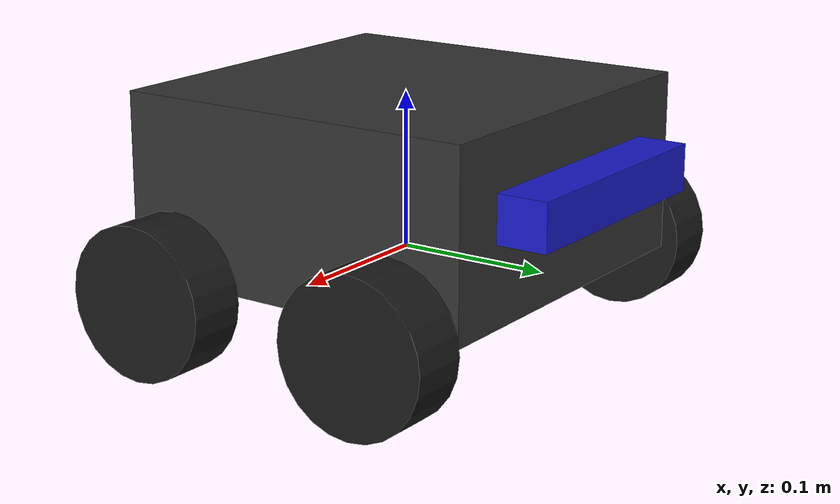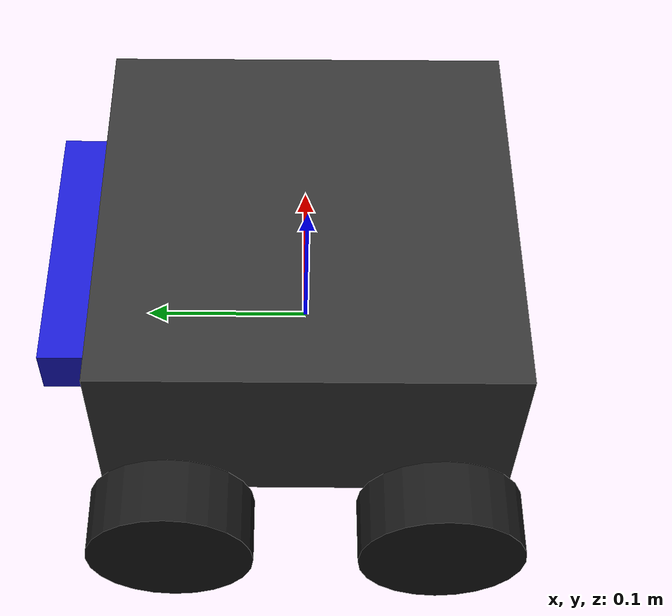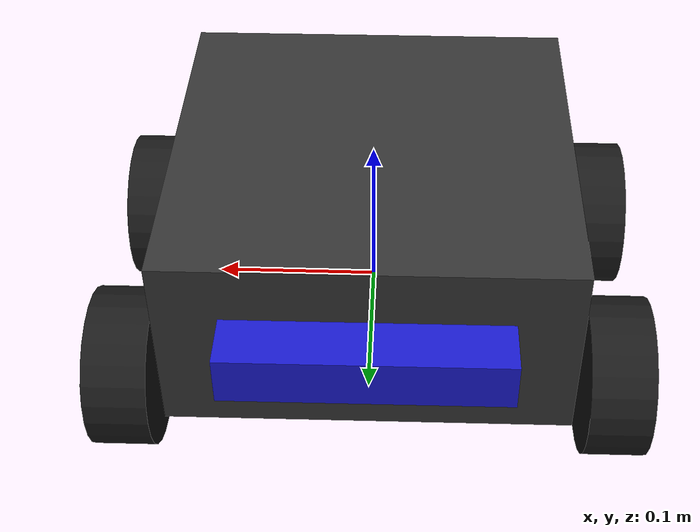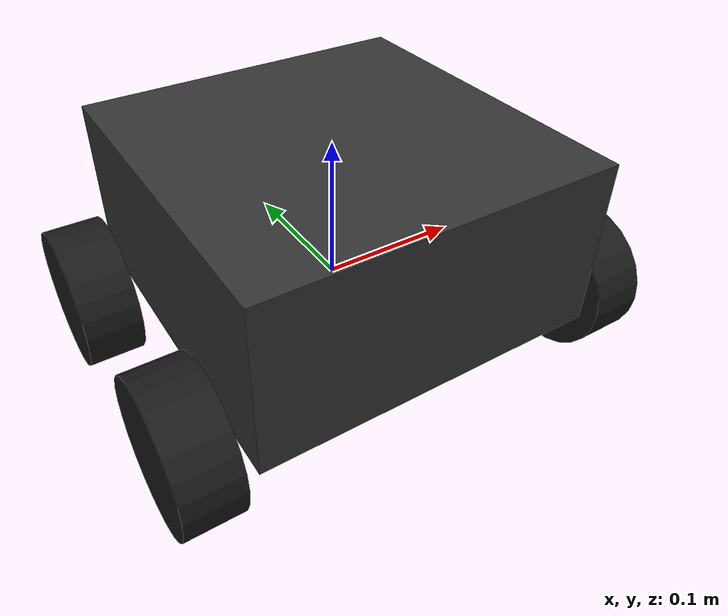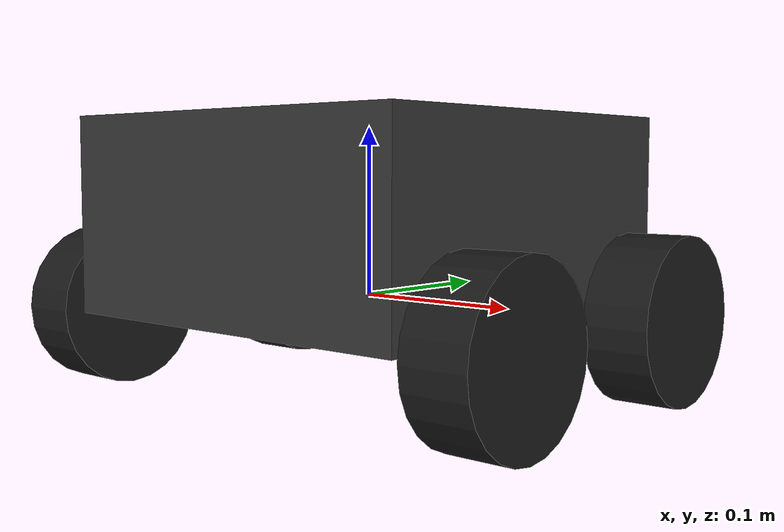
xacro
<?xml version="1.0"?>
<robot name="mecanum_robot" xmlns:xacro="http://www.ros.org/wiki/xacro">

  <xacro:property name="base_length"    value="0.24"/>  <!-- m, body length (X) -->
  <xacro:property name="base_width"     value="0.24"/>  <!-- m, body width (Y) -->
  <xacro:property name="base_height"    value="0.116"/>  <!-- m, body height -->
  <xacro:property name="base_mass"      value="2.0"/>   <!-- kg -->

  <xacro:property name="wheel_radius"   value="0.0485"/>
  <xacro:property name="wheel_width"    value="0.038"/>
  <xacro:property name="wheel_mass"     value="0.15"/>   <!-- kg -->
  <!-- distance from wheel center to robot center -->
  <xacro:property name="wheel_x_off"    value="0.0785"/>  <!-- longitudinal -->
  <xacro:property name="wheel_y_off"    value="0.148"/> <!-- lateral -->

  <!-- Astra camera -->
  <xacro:property name="cam_x"  value="0.135"/>   <!-- forward -->
  <xacro:property name="cam_y"  value="0.0"/>
  <xacro:property name="cam_z"  value="-0.05"/>   <!-- above the body -->

  <!-- ================================================================
       MACRO INERTIA
       ================================================================ -->
  <xacro:macro name="box_inertia" params="m x y z">
    <inertial>
      <mass value="${m}"/>
      <inertia
        ixx="${m*(y*y+z*z)/12}" ixy="0" ixz="0"
        iyy="${m*(x*x+z*z)/12}" iyz="0"
        izz="${m*(x*x+y*y)/12}"/>
    </inertial>
  </xacro:macro>

  <xacro:macro name="cylinder_inertia" params="m r h">
    <inertial>
      <mass value="${m}"/>
      <inertia
        ixx="${m*(3*r*r+h*h)/12}" ixy="0" ixz="0"
        iyy="${m*(3*r*r+h*h)/12}" iyz="0"
        izz="${m*r*r/2}"/>
    </inertial>
  </xacro:macro>

  <link name="base_footprint"/>

  <joint name="base_footprint_joint" type="fixed">
    <parent link="base_footprint"/>
    <child  link="base_link"/>
    <origin xyz="0 0 ${wheel_radius}" rpy="0 0 1.5708"/>
    <!--                                        ^ +90 deg about Z  -->
  </joint>

  <link name="base_link">
    <visual>
      <origin xyz="0 0 0" rpy="0 0 0"/>
      <geometry>
        <box size="${base_length} ${base_width} ${base_height}"/>
      </geometry>
      <material name="dark_gray">
        <color rgba="0.2 0.2 0.2 1.0"/>
      </material>
    </visual>
    <collision>
      <origin xyz="0 0 0" rpy="0 0 0"/>
      <geometry>
        <box size="${base_length} ${base_width} ${base_height}"/>
      </geometry>
    </collision>
    <xacro:box_inertia m="${base_mass}"
                       x="${base_length}" y="${base_width}" z="${base_height}"/>
  </link>

  <xacro:macro name="mecanum_wheel" params="name pos_x pos_y reflect_y">

    <link name="wheel_${name}_link">
      <visual>
        <origin xyz="0 0 0" rpy="${pi/2} 0 0"/>
        <geometry>
          <cylinder radius="${wheel_radius}" length="${wheel_width}"/>
        </geometry>
        <material name="black">
          <color rgba="0.1 0.1 0.1 1.0"/>
        </material>
      </visual>
      <collision>
        <origin xyz="0 0 0" rpy="${pi/2} 0 0"/>
        <geometry>
          <cylinder radius="${wheel_radius}" length="${wheel_width}"/>
        </geometry>
      </collision>
      <xacro:cylinder_inertia m="${wheel_mass}"
                              r="${wheel_radius}" h="${wheel_width}"/>
    </link>

    <joint name="wheel_${name}_joint" type="continuous">
      <parent link="base_link"/>
      <child  link="wheel_${name}_link"/>
      <origin xyz="${pos_x} ${pos_y} ${-base_height/2}" rpy="0 0 0"/>
      <axis xyz="0 ${reflect_y} 0"/>
      <!-- mecanum: force along X or Y depending on the roller spin direction -->
    </joint>

  </xacro:macro>

  <!-- 4 wheels: front-left, front-right, rear-left, rear-right -->
  <xacro:mecanum_wheel name="fl" pos_x=" ${wheel_x_off}" pos_y=" ${wheel_y_off}" reflect_y=" 1"/>
  <xacro:mecanum_wheel name="fr" pos_x=" ${wheel_x_off}" pos_y="-${wheel_y_off}" reflect_y="-1"/>
  <xacro:mecanum_wheel name="rl" pos_x="-${wheel_x_off}" pos_y=" ${wheel_y_off}" reflect_y=" 1"/>
  <xacro:mecanum_wheel name="rr" pos_x="-${wheel_x_off}" pos_y="-${wheel_y_off}" reflect_y="-1"/>

  <link name="camera_link">
    <visual>
      <origin xyz="0 0 0" rpy="0 0 0"/>
      <geometry>
        <box size="0.035 0.165 0.030"/>
      </geometry>
      <material name="camera_color">
        <color rgba="0.1 0.1 0.8 1.0"/>
      </material>
    </visual>
    <collision>
      <origin xyz="0 0 0" rpy="0 0 0"/>
      <geometry>
        <box size="0.035 0.165 0.030"/>
      </geometry>
    </collision>
    <inertial>
      <mass value="0.17"/>
      <inertia ixx="0.001" ixy="0" ixz="0"
               iyy="0.001" iyz="0" izz="0.001"/>
    </inertial>
  </link>

  <joint name="camera_joint" type="fixed">
    <parent link="base_link"/>
    <child  link="camera_link"/>
    <origin xyz="${cam_x} ${cam_y} ${base_height/2 + cam_z}"
            rpy="0 0 0"/>
  </joint>

  <!-- RGB optical frame: rotated so Z points forward (ROS camera standard) -->
  <link name="camera_rgb_frame"/>
  <joint name="camera_rgb_joint" type="fixed">
    <parent link="camera_link"/>
    <child  link="camera_rgb_frame"/>
    <origin xyz="0 0.015 0" rpy="${-pi/2} 0 ${-pi/2}"/>
  </joint>

  <!-- Depth optical frame -->
  <link name="camera_depth_frame"/>
  <joint name="camera_depth_joint" type="fixed">
    <parent link="camera_link"/>
    <child  link="camera_depth_frame"/>
    <origin xyz="0 0.0 0" rpy="${-pi/2} 0 ${-pi/2}"/>
  </joint>

  <!-- ================================================================
       GAZEBO PLUGINS
       ================================================================ -->

  <!-- Mecanum drive — planar move plugin -->
  <gazebo>
    <plugin name="mecanum_drive" filename="libgazebo_ros_planar_move.so">
      <ros>
        <remapping>cmd_vel:=cmd_vel</remapping>
        <remapping>odom:=odom</remapping>
      </ros>
      <update_rate>50</update_rate>
      <publish_rate>20</publish_rate>
      <publish_odom>true</publish_odom>
      <publish_odom_tf>true</publish_odom_tf>
      <odometry_frame>odom</odometry_frame>
      <robot_base_frame>base_link</robot_base_frame>
      <covariance_x>0.0001</covariance_x>
      <covariance_y>0.0001</covariance_y>
      <covariance_yaw>0.01</covariance_yaw>
    </plugin>
  </gazebo>

  <!-- Depth camera — simulate Astra -->
  <gazebo reference="camera_link">
    <!-- RGB Camera -->
    <sensor type="camera" name="rgb_camera">
      <always_on>true</always_on>
      <update_rate>30</update_rate>
      <camera>
        <horizontal_fov>1.047</horizontal_fov>
        <image>
          <width>640</width>
          <height>480</height>
          <format>R8G8B8</format>
        </image>
        <clip>
          <near>0.35</near>
          <far>8.0</far>
        </clip>
      </camera>
      <plugin name="rgb_camera_plugin" filename="libgazebo_ros_camera.so">
        <ros>
          <remapping>~/image_raw:=/camera/color/image_raw</remapping>
          <remapping>~/camera_info:=/camera/color/camera_info</remapping>
        </ros>
        <camera_name>rgb_camera</camera_name>
        <frame_name>camera_rgb_frame</frame_name>
      </plugin>
    </sensor>

    <!-- Depth - simulated with a ray sensor -->
    <sensor type="ray" name="depth_camera">
      <always_on>true</always_on>
      <update_rate>10</update_rate>
      <ray>
        <scan>
          <horizontal>
            <samples>640</samples>
            <min_angle>-0.5236</min_angle>  <!-- -30 deg -->
            <max_angle>0.5236</max_angle>   <!-- +30 deg -->
          </horizontal>
          <vertical>
            <samples>480</samples>
            <min_angle>-0.3927</min_angle>  <!-- -22.5 deg -->
            <max_angle>0.3927</max_angle>   <!-- +22.5 deg -->
          </vertical>
        </scan>
        <range>
          <min>0.35</min>
          <max>8.0</max>
        </range>
      </ray>
      <plugin name="depth_plugin" filename="libgazebo_ros_ray_sensor.so">
        <ros>
          <remapping>~/out:=/scan</remapping>
        </ros>
        <output_type>sensor_msgs/LaserScan</output_type>
        <frame_name>camera_depth_frame</frame_name>
      </plugin>
    </sensor>
  </gazebo>

  <!-- Wheel colors in Gazebo -->
  <gazebo reference="wheel_fl_link"><material>Gazebo/Black</material></gazebo>
  <gazebo reference="wheel_fr_link"><material>Gazebo/Black</material></gazebo>
  <gazebo reference="wheel_rl_link"><material>Gazebo/Black</material></gazebo>
  <gazebo reference="wheel_rr_link"><material>Gazebo/Black</material></gazebo>

</robot>
